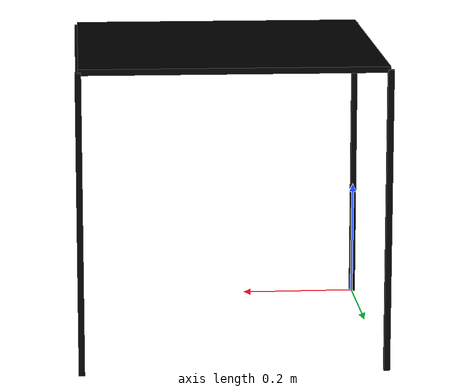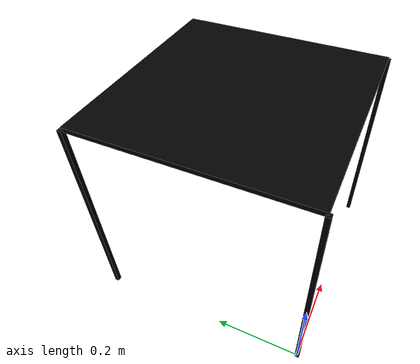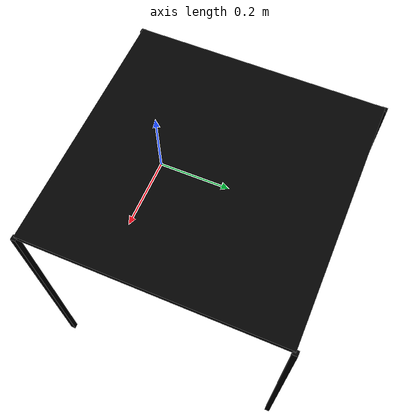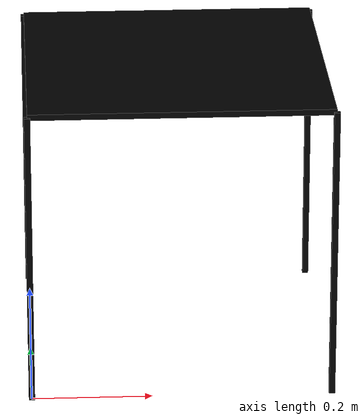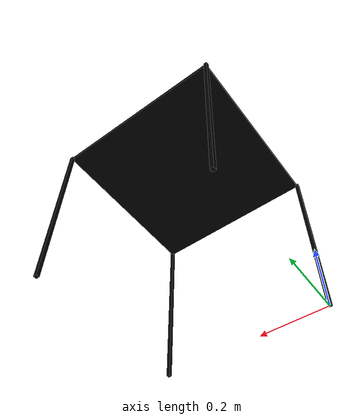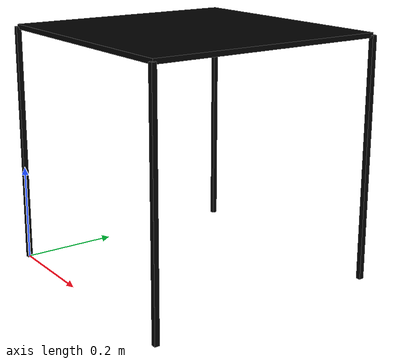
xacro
<?xml version="1.0"?>
<robot xmlns:xacro="http://www.ros.org/wiki/xacro" name="shelf">

  <!-- Parameter Definitions -->

  <xacro:property name="shef_top_size"     value="0.5"/>
  <xacro:property name="poll_size"     value="0.01"/>
  <xacro:property name="poll_height"     value="0.5"/>

  <!-- Material Definitions -->
  <material name="gray">
    <color rgba="0.5 0.5 0.5 1.0"/>
  </material>
  <material name="black">
    <color rgba="0.0 0.0 0.0 1.0"/>
  </material>
  <material name="red">
    <color rgba="1.0 0.0 0.0 1.0"/>
  </material>

  <!-- Link Definitions -->
  <link name="poll1">
    <visual>
      <origin xyz="0 0 ${poll_height/2}" rpy="0 0 0"/>
      <geometry>
        <box size="${poll_size} ${poll_size} ${poll_height}"/>
      </geometry>
      <material name="black"/>
    </visual>
    <collision>
      <origin xyz="0 0 ${poll_height/2}" rpy="0 0 0"/>
      <geometry>
        <box size="${poll_size} ${poll_size} ${poll_height}"/>
      </geometry>
    </collision>
    <inertial>
      <mass value="0.001"/>
      <origin xyz="0 0 0" rpy="0 0 0"/>
      <inertia ixx="1.1175580e-05" ixy="-4.2369783e-11" ixz="-5.9381719e-09" iyy="1.1192413e-05" iyz="-1.4400107e-11" izz="2.0712558e-05" />
    </inertial>
  </link>

  <link name="poll2">
    <visual>
      <origin xyz="0 0 ${poll_height/2}" rpy="0 0 0"/>
      <geometry>
        <box size="${poll_size} ${poll_size} ${poll_height}"/>
      </geometry>
      <material name="black"/>
    </visual>
    <collision>
      <origin xyz="0 0 ${poll_height/2}" rpy="0 0 0"/>
      <geometry>
        <box size="${poll_size} ${poll_size} ${poll_height}"/>
      </geometry>
    </collision>
    <inertial>
      <mass value="0.001"/>
      <origin xyz="0 0 0" rpy="0 0 0"/>
      <inertia ixx="1.1175580e-05" ixy="-4.2369783e-11" ixz="-5.9381719e-09" iyy="1.1192413e-05" iyz="-1.4400107e-11" izz="2.0712558e-05" />
    </inertial>
  </link>

  <joint name="poll1_joint" type="fixed">
    <parent link="poll1"/>
    <child link="poll2"/>
    <origin xyz="0.5 0.0 0.0" rpy="0 0 0"/>
    <axis xyz="0 0 1"/>
  </joint>

  <link name="poll3">
    <visual>
      <origin xyz="0 0 ${poll_height/2}" rpy="0 0 0"/>
      <geometry>
        <box size="${poll_size} ${poll_size} ${poll_height}"/>
      </geometry>
      <material name="black"/>
    </visual>
    <collision>
      <origin xyz="0 0 ${poll_height/2}" rpy="0 0 0"/>
      <geometry>
        <box size="${poll_size} ${poll_size} ${poll_height}"/>
      </geometry>
    </collision>
    <inertial>
      <mass value="0.001"/>
      <origin xyz="0 0 0" rpy="0 0 0"/>
      <inertia ixx="1.1175580e-05" ixy="-4.2369783e-11" ixz="-5.9381719e-09" iyy="1.1192413e-05" iyz="-1.4400107e-11" izz="2.0712558e-05" />
    </inertial>
  </link>

  <joint name="poll2_joint" type="fixed">
    <parent link="poll2"/>
    <child link="poll3"/>
    <origin xyz="0.0 0.5 0.0" rpy="0 0 0"/>
    <axis xyz="0 0 1"/>
  </joint>

  <link name="poll4">
    <visual>
      <origin xyz="0 0 ${poll_height/2}" rpy="0 0 0"/>
      <geometry>
        <box size="${poll_size} ${poll_size} ${poll_height}"/>
      </geometry>
      <material name="black"/>
    </visual>
    <collision>
      <origin xyz="0 0 ${poll_height/2}" rpy="0 0 0"/>
      <geometry>
        <box size="${poll_size} ${poll_size} ${poll_height}"/>
      </geometry>
    </collision>
    <inertial>
      <mass value="0.001"/>
      <origin xyz="0 0 0" rpy="0 0 0"/>
      <inertia ixx="1.1175580e-05" ixy="-4.2369783e-11" ixz="-5.9381719e-09" iyy="1.1192413e-05" iyz="-1.4400107e-11" izz="2.0712558e-05" />
    </inertial>
  </link>

  <joint name="poll3_joint" type="fixed">
    <parent link="poll3"/>
    <child link="poll4"/>
    <origin xyz="-0.5 0.0 0.0" rpy="0 0 0"/>
    <axis xyz="0 0 1"/>
  </joint>

  <link name="shle_top">
    <visual>
      <origin xyz="0 0 ${shef_top_size/2}" rpy="0 0 0"/>
      <geometry>
        <box size="${shef_top_size} ${shef_top_size} 0.01"/>
      </geometry>
      <material name="black"/>
    </visual>
    <collision>
      <origin xyz="0 0 ${shef_top_size/2}" rpy="0 0 0"/>
      <geometry>
        <box size="${shef_top_size} ${shef_top_size} 0.01"/>
      </geometry>
    </collision>
    <inertial>
      <mass value="0.001"/>
      <origin xyz="0 0 0" rpy="0 0 0"/>
      <inertia ixx="0.001" ixy="0.0" ixz="0.0" iyy="0.001" iyz="0.0" izz="0.001" />
    </inertial>
  </link>

  <joint name="shlef_top_joint" type="fixed">
    <parent link="poll4"/>
    <child link="shle_top"/>
    <origin xyz="${shef_top_size/2} ${-shef_top_size/2} ${poll_height/2}" rpy="0 0 0"/>
    <axis xyz="0 0 1"/>
  </joint>

</robot>
